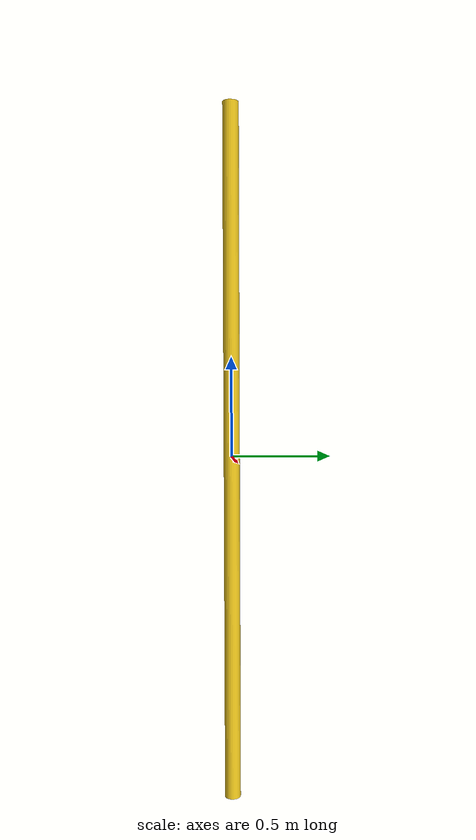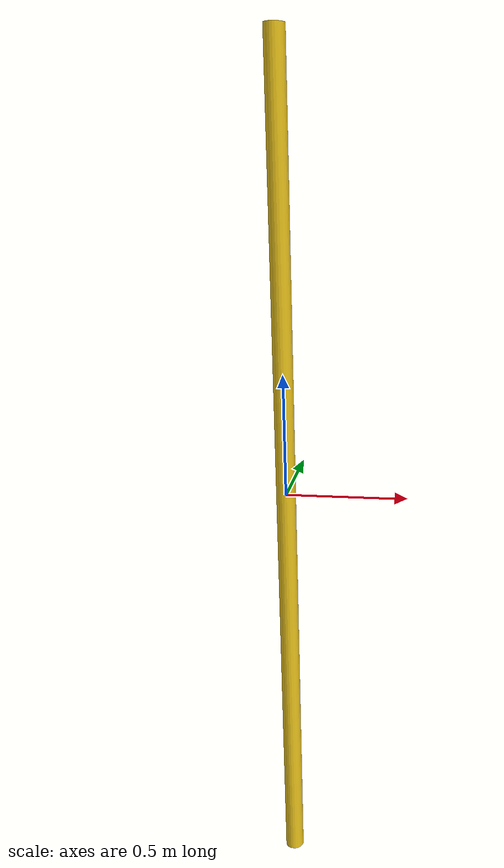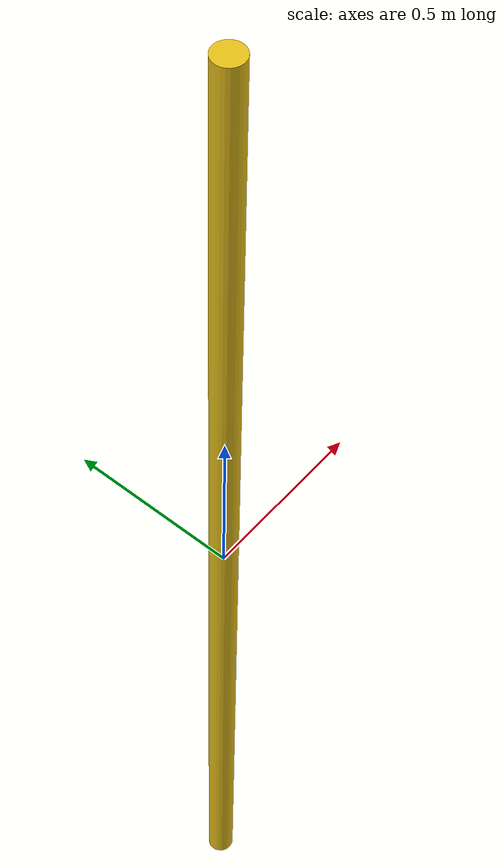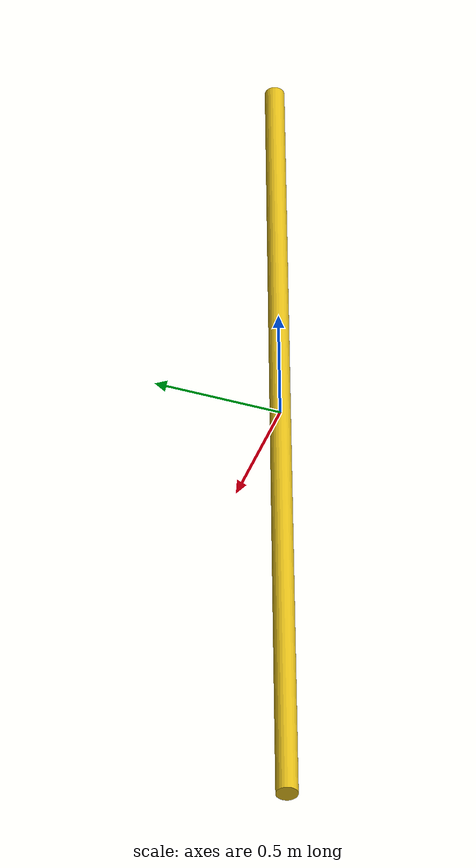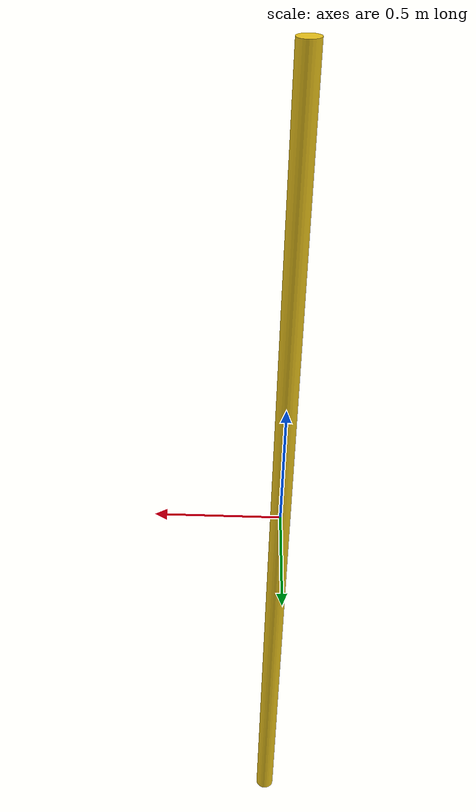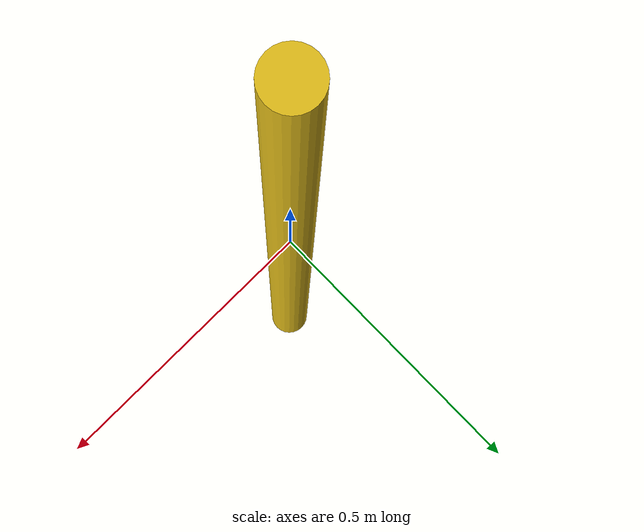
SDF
<?xml version="1.0"?>
<sdf version="1.10"><model name="wire_3p5m_yellow"><static>true</static>
<link name="link"><visual name="wire">
<geometry><cylinder><radius>0.04</radius><length>3.5</length></cylinder></geometry>
<material><ambient>0.720 0.600 0.080 1</ambient>
<diffuse>0.900 0.750 0.100 1</diffuse></material></visual></link></model></sdf>
